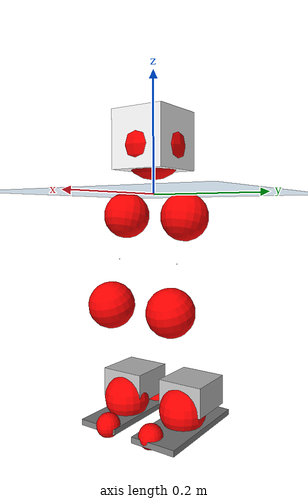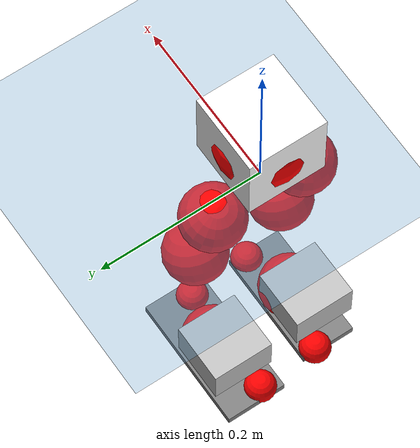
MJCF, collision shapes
<mujoco model="pi_12dof_release_v1">
  <compiler angle="radian" assetdir="assets" balanceinertia="true" inertiafromgeom="false"/>

  <option timestep="0.005" density="1.2" viscosity="2e-05"/>

  <size nkey="1"/>

  <visual>
    <quality shadowsize="8192"/>
    <map shadowclip="0.5"/>
  </visual>

  <default>
    <default class="/">
      <joint armature="0.01" damping="0.01" frictionloss="0.01"/>
      <geom contype="0" conaffinity="0" group="1" solref="-1000 -80"/>
      <site size="0.01 0.005 0.005" group="5"/>
      <general forcelimited="true" biastype="affine" gainprm="20" biasprm="0 -20 -0.5"/>
      <default class="foot">
        <geom size="0.0845 0.036 0.005" type="box" condim="6" group="4" priority="1" friction="0.9 0.2 0.2" solimp="0.015 1 0.005"/>
      </default>
      <default class="reward_collision_sphere">
        <geom group="5" rgba="1 0 0 1"/>
      </default>
    </default>
  </default>

  <asset>
    <texture type="skybox" colorspace="auto" name="//unnamed_texture_0" builtin="gradient" rgb1="0.95 0.95 0.95" rgb2="0.95 0.95 0.95" width="100" height="600"/>
    <texture type="2d" colorspace="auto" name="texplane" builtin="checker" rgb1="0.345 0.575 0.748" rgb2="0.345 0.575 0.748" markrgb="1 1 1" width="512" height="512"/>
    <material name="MatPlane" class="/" texture="texplane" texuniform="true" texrepeat="2 2" specular="0.9"/>
    <mesh name="baselink_1" class="/" file="baselink_1.STL"/>
    <mesh name="r_hip_pitch_link" class="/" file="r_hip_pitch_link.STL"/>
    <mesh name="r_hip_roll_link" class="/" file="r_hip_roll_link.STL"/>
    <mesh name="r_thigh_link" class="/" file="r_thigh_link.STL"/>
    <mesh name="r_calf_link" class="/" file="r_calf_link.STL"/>
    <mesh name="r_ankle_pitch_link" class="/" file="r_ankle_pitch_link.STL"/>
    <mesh name="r_ankle_roll_link" class="/" file="r_ankle_roll_link.STL"/>
    <mesh name="l_hip_pitch_link" class="/" file="l_hip_pitch_link.STL"/>
    <mesh name="l_hip_roll_link" class="/" file="l_hip_roll_link.STL"/>
    <mesh name="l_thigh_link" class="/" file="l_thigh_link.STL"/>
    <mesh name="l_calf_link" class="/" file="l_calf_link.STL"/>
    <mesh name="l_ankle_pitch_link" class="/" file="l_ankle_pitch_link.STL"/>
    <mesh name="l_ankle_roll_link" class="/" file="l_ankle_roll_link.STL"/>
  </asset>

  <worldbody>
    <geom name="floor" class="/" size="100 100 0.125" type="plane" group="0" material="MatPlane"/>
    <light name="toplight_shadow" class="/" pos="0 0 5" dir="0.0990148 0.0990148 -0.990148" type="directional" ambient="0.04 0.04 0.04" diffuse="0.55 0.55 0.55" specular="0.12 0.12 0.12"/>
    <light name="toplight_fill" class="/" pos="0 0 5" dir="0.0990148 0.0990148 -0.990148" type="directional" castshadow="false" ambient="0.04 0.04 0.04" diffuse="0.3 0.3 0.3" specular="0.08 0.08 0.08"/>
    <body name="trunk" pos="-7.1986e-05 -1.08367e-05 0.00013433" quat="1 -7.40276e-06 -4.92402e-06 6.60149e-06">
      <inertial pos="0.00172806 -0.00112227 0.0437691" quat="0.691893 0.00227803 0.011951 0.721898" mass="1.88509" diaginertia="0.0110286 0.00225205 0.00628799"/>
      <joint name="//unnamed_joint_0" type="free"/>
      <geom name="//unnamed_geom_1" class="/" type="mesh" density="0" rgba="1 1 1 1" mesh="baselink_1"/>
      <geom name="//unnamed_geom_2" class="/" size="0.0477294 0.0477294 0.0477294" pos="0 0 0.0868894" type="box" rgba="1 1 1 1"/>
      <geom name="//unnamed_geom_3" class="reward_collision_sphere" size="0.0525023" pos="0 0 0.0760282"/>
      <site name="imu" class="/" pos="-0.000668745 -0.00448003 -6.59414e-06" size="0.00954588"/>
      <camera name="track" class="/" pos="0 -1.51082 0" quat="0.707107 0.707107 0 0" mode="trackcom"/>
      <camera name="ego_camera" class="/" pos="0.0766677 0 0.195501" quat="-0.5 -0.5 0.5 0.5"/>
      <body name="r_hip_pitch_link" pos="-0.000318 -0.0152973 -0.0343958" quat="0.992195 2.74711e-05 -0.124694 3.15789e-05">
        <inertial pos="0.000967347 -0.0426207 -0.000901553" quat="-0.0194989 0.705201 -0.0292382 0.708136" mass="0.322823" diaginertia="0.000121064 2.42796e-05 0.000126486"/>
        <joint name="r_hip_pitch_joint" class="/" pos="0 0 0" axis="0.00366243 -0.999992 -0.00143303" range="-1.74813 1.26775" armature="0.00947204" damping="0.0123162" frictionloss="0.00950212"/>
        <geom name="//unnamed_geom_4" class="/" type="mesh" density="0" rgba="0.75294 0.75294 0.75294 1" mesh="r_hip_pitch_link"/>
        <geom name="//unnamed_geom_5" class="/" size="0.000477294 0.000477294 0.000477294" type="box" rgba="0.75294 0.75294 0.75294 1"/>
        <body name="r_hip_roll_link" pos="0.0013408 -0.0400632 -6.83867e-05" quat="1 4.50309e-05 4.08261e-05 0.000108213">
          <inertial pos="-0.00111593 -0.00102503 -0.0660237" quat="0.704123 -0.0793691 -0.0808826 0.700977" mass="0.338088" diaginertia="0.000372737 6.82198e-05 0.00019419"/>
          <joint name="r_hip_roll_joint" class="/" pos="0 0 0" axis="-0.999994 -0.00180653 -0.00285692" range="-0.120288 0.502752" armature="0.00979045" damping="0.00378123" frictionloss="0.00961902"/>
          <geom name="//unnamed_geom_6" class="/" type="mesh" density="0" rgba="0.75294 0.75294 0.75294 1" mesh="r_hip_roll_link"/>
          <geom name="//unnamed_geom_7" class="/" size="0.000477294 0.000477294 0.000477294" type="box" rgba="0.75294 0.75294 0.75294 1"/>
          <geom name="//unnamed_geom_8" class="reward_collision_sphere" size="0.0381835"/>
          <body name="r_thigh_link" pos="0.000604158 -0.000329578 -0.0750893" quat="1 0.000152933 -0.000157927 -0.00038136">
            <inertial pos="3.90762e-05 0.000667068 -0.0531352" quat="0.737244 0.675626 -8.53203e-05 -0.000141892" mass="0.0976605" diaginertia="0.000139857 2.36999e-05 8.61407e-05"/>
            <joint name="r_thigh_joint" class="/" pos="0 0 0" axis="0.0002645 -0.000481107 -1" range="-0.293537 0.593209" armature="0.0099562" damping="0.00511755" frictionloss="0.00963228"/>
            <geom name="//unnamed_geom_9" class="/" type="mesh" density="0" rgba="0.75294 0.75294 0.75294 1" mesh="r_thigh_link"/>
            <geom name="//unnamed_geom_10" class="/" size="0.000477294 0.000477294 0.000477294" type="box" rgba="0.75294 0.75294 0.75294 1"/>
            <body name="r_calf_link" pos="0.000439602 -0.00116993 -0.0762915" quat="0.947665 1.67364e-05 0.319267 4.64827e-05">
              <inertial pos="0.000567257 -0.000625788 -0.0756847" quat="0.99998 -0.00417724 0.000372395 0.00471452" mass="0.702211" diaginertia="0.00395011 0.000841904 0.000264559"/>
              <joint name="r_calf_joint" class="/" pos="0 0 0" axis="-0.00325595 -0.999994 0.0014472" range="-1.61464 0.628689" armature="0.00952317" damping="0.00722511" frictionloss="0.00908018"/>
              <geom name="//unnamed_geom_11" class="/" type="mesh" density="0" rgba="0.75294 0.75294 0.75294 1" mesh="r_calf_link"/>
              <geom name="//unnamed_geom_12" class="/" size="0.000477294 0.000477294 0.000477294" type="box" rgba="0.75294 0.75294 0.75294 1"/>
              <geom name="//unnamed_geom_13" class="reward_collision_sphere" size="0.0381835"/>
              <body name="r_ankle_pitch_link" pos="0.001606 0.00220037 -0.153191" quat="0.980089 0.000494292 -0.198559 0.000138556">
                <inertial pos="0.00584955 0.00109898 -0.000213488" quat="0.00362862 0.704767 -0.00409942 0.709418" mass="0.15304" diaginertia="0.000345082 5.47729e-05 0.000183665"/>
                <joint name="r_ankle_pitch_joint" class="/" pos="0 0 0" axis="0.00707587 -0.999969 -0.00332858" stiffness="0.000512096" range="-1.3183 0.524856" armature="0.00942366" damping="0.0063897" frictionloss="0.00987686"/>
                <geom name="//unnamed_geom_14" class="/" type="mesh" density="0" rgba="0.75294 0.75294 0.75294 1" mesh="r_ankle_pitch_link"/>
                <geom name="//unnamed_geom_15" class="/" size="0.0372289 0.0381835 0.0238647" type="box" rgba="0.75294 0.75294 0.75294 1"/>
                <body name="r_ankle_roll_link" pos="0.076546 0.00270172 0.000166842" quat="1 -2.10012e-05 -1.07662e-05 -0.000352211">
                  <inertial pos="-0.0252833 0.000315026 -0.0162387" quat="0.562253 0.430388 0.43114 0.559247" mass="0.452135" diaginertia="0.00126847 0.000253424 0.000426338"/>
                  <joint name="r_ankle_roll_joint" class="/" pos="0 0 0" axis="-0.999999 -0.000745312 -0.000995604" range="-0.180269 0.154333" armature="0.00947236" damping="0.0119319" frictionloss="0.0100087"/>
                  <geom name="//unnamed_geom_16" class="/" type="mesh" density="0" rgba="0.75294 0.75294 0.75294 1" mesh="r_ankle_roll_link"/>
                  <geom name="//unnamed_geom_17" class="/" type="mesh" rgba="0.75294 0.75294 0.75294 1" mesh="r_ankle_roll_link"/>
                  <geom name="right_foot" class="foot" size="0.0754419 0.0342098 0.00459589" pos="-0.052134 0 -0.0477892"/>
                  <geom name="//unnamed_geom_19" class="reward_collision_sphere" size="0.0381835" pos="-0.0511118 0 -0.0217223"/>
                  <geom name="//unnamed_geom_20" class="reward_collision_sphere" size="0.0190918" pos="0.0153335 0.0151082 -0.0434447"/>
                  <geom name="//unnamed_geom_21" class="reward_collision_sphere" size="0.0190918" pos="-0.122668 0.0151082 -0.0434447"/>
                  <site name="right_foot" class="foot" pos="-0.052134 0 -0.0477892" size="0.00954588"/>
                </body>
              </body>
            </body>
          </body>
        </body>
      </body>
      <body name="l_hip_pitch_link" pos="-0.000859006 0.01755 -0.0349419" quat="0.992197 0.000222765 -0.124683 0.00012501">
        <inertial pos="0.00104234 0.0400409 -0.00122096" quat="-0.0392172 0.706036 0.0302378 0.706442" mass="0.334212" diaginertia="0.000141417 2.55576e-05 0.000150193"/>
        <joint name="l_hip_pitch_joint" class="/" pos="0 0 0" axis="0.000408763 1 0.000393051" range="-1.25127 1.74889" armature="0.00969193" damping="0.00150342" frictionloss="0.00928356"/>
        <geom name="//unnamed_geom_22" class="/" type="mesh" density="0" rgba="0.75294 0.75294 0.75294 1" mesh="l_hip_pitch_link"/>
        <geom name="//unnamed_geom_23" class="/" size="0.000477294 0.000477294 0.000477294" type="box" rgba="0.75294 0.75294 0.75294 1"/>
        <body name="l_hip_roll_link" pos="0.000985682 0.0422263 -0.00127983" quat="1 -1.44245e-05 -3.22791e-05 -4.55425e-05">
          <inertial pos="-0.000948906 -0.000265022 -0.0677554" quat="0.701596 -0.0729507 -0.0796726 0.704339" mass="0.342314" diaginertia="0.000368737 6.69326e-05 0.000192158"/>
          <joint name="l_hip_roll_joint" class="/" pos="0 0 0" axis="-0.999998 -0.00182502 -0.00112125" range="-0.524999 0.115276" armature="0.00965386" damping="0.00740483" frictionloss="0.00920456"/>
          <geom name="//unnamed_geom_24" class="/" type="mesh" density="0" rgba="0.75294 0.75294 0.75294 1" mesh="l_hip_roll_link"/>
          <geom name="//unnamed_geom_25" class="/" size="0.000477294 0.000477294 0.000477294" type="box" rgba="0.75294 0.75294 0.75294 1"/>
          <geom name="//unnamed_geom_26" class="reward_collision_sphere" size="0.0381835"/>
          <body name="l_thigh_link" pos="0.00071297 -0.00206384 -0.0750643" quat="1 1.45728e-05 1.57261e-05 1.50725e-05">
            <inertial pos="0.000512061 -0.00133265 -0.0517459" quat="0.675597 0.737269 0.00105991 -0.000799509" mass="0.0961097" diaginertia="0.000139239 2.3126e-05 8.66741e-05"/>
            <joint name="l_thigh_joint" class="/" pos="0 0 0" axis="6.10919e-05 -0.000114355 -1" range="-0.59139 0.296552" armature="0.00992323" damping="0.00108571" frictionloss="0.00958832"/>
            <geom name="//unnamed_geom_27" class="/" type="mesh" density="0" rgba="0.75294 0.75294 0.75294 1" mesh="l_thigh_link"/>
            <geom name="//unnamed_geom_28" class="/" size="0.000477294 0.000477294 0.000477294" type="box" rgba="0.75294 0.75294 0.75294 1"/>
            <body name="l_calf_link" pos="-0.000765114 0.000197117 -0.0751698" quat="0.947641 -0.000143953 0.319337 -0.000182366">
              <inertial pos="6.28321e-05 0.00261119 -0.0759284" quat="0.999985 0.00301639 0.000388311 0.00465314" mass="0.697169" diaginertia="0.00388125 0.000843655 0.000264443"/>
              <joint name="l_calf_joint" class="/" pos="0 0 0" axis="0.00364841 0.999991 0.00201176" stiffness="0.00110796" range="-0.644882 1.66796" armature="0.00939144" damping="0.0075529" frictionloss="0.00925983"/>
              <geom name="//unnamed_geom_29" class="/" type="mesh" density="0" rgba="0.75294 0.75294 0.75294 1" mesh="l_calf_link"/>
              <geom name="//unnamed_geom_30" class="/" size="0.000477294 0.000477294 0.000477294" type="box" rgba="0.75294 0.75294 0.75294 1"/>
              <geom name="//unnamed_geom_31" class="reward_collision_sphere" size="0.0381835"/>
              <body name="l_ankle_pitch_link" pos="-6.08613e-05 0.00106677 -0.152413" quat="0.980065 0.000464864 -0.198678 -0.000275702">
                <inertial pos="0.00489356 -0.00142763 -0.00103709" quat="-0.00200754 0.70759 0.00353292 0.706611" mass="0.154004" diaginertia="0.000347281 5.49165e-05 0.000183027"/>
                <joint name="l_ankle_pitch_joint" class="/" pos="0 0 0" axis="0.000954432 0.999999 -0.00122824" stiffness="0.00305645" range="-0.512843 1.29109" armature="0.00967804" damping="0.00767148" frictionloss="0.00956467"/>
                <geom name="//unnamed_geom_32" class="/" type="mesh" density="0" rgba="0.75294 0.75294 0.75294 1" mesh="l_ankle_pitch_link"/>
                <geom name="//unnamed_geom_33" class="/" size="0.0372289 0.0381835 0.0238647" type="box" rgba="0.75294 0.75294 0.75294 1"/>
                <body name="l_ankle_roll_link" pos="0.0750068 -0.00122024 -0.00011077" quat="1 -0.000396476 0.000113834 0.000375452">
                  <inertial pos="-0.0234532 -0.000415372 -0.0152079" quat="0.559923 0.433323 0.434851 0.556437" mass="0.452837" diaginertia="0.00128127 0.000254911 0.000430895"/>
                  <joint name="l_ankle_roll_joint" class="/" pos="0 0 0" axis="-0.99996 0.00559168 0.007004" stiffness="0.000788659" range="-0.123201 0.156052" armature="0.0100794" damping="0.0141145" frictionloss="0.00928594"/>
                  <geom name="//unnamed_geom_34" class="/" type="mesh" density="0" rgba="0.75294 0.75294 0.75294 1" mesh="l_ankle_roll_link"/>
                  <geom name="//unnamed_geom_35" class="/" type="mesh" rgba="0.75294 0.75294 0.75294 1" mesh="l_ankle_roll_link"/>
                  <geom name="left_foot" class="foot" size="0.0850346 0.0381076 0.00468491" pos="-0.052134 0 -0.0477892"/>
                  <geom name="//unnamed_geom_37" class="reward_collision_sphere" size="0.0381835" pos="-0.0511118 0 -0.0217223"/>
                  <geom name="//unnamed_geom_38" class="reward_collision_sphere" size="0.0190918" pos="0.0153335 -0.0151082 -0.0434447"/>
                  <geom name="//unnamed_geom_39" class="reward_collision_sphere" size="0.0190918" pos="-0.122668 -0.0151082 -0.0434447"/>
                  <site name="left_foot" class="foot" pos="-0.052134 0 -0.0477892" size="0.00954588"/>
                </body>
              </body>
            </body>
          </body>
        </body>
      </body>
    </body>
  </worldbody>

  <contact>
    <pair class="/" geom1="floor" geom2="right_foot" name="//unnamed_contact_1"/>
    <pair class="/" geom1="floor" geom2="left_foot" name="//unnamed_contact_0"/>
  </contact>

  <actuator>
    <general name="r_hip_pitch_joint" class="/" joint="r_hip_pitch_joint" forcerange="-20.0978 20.0978" gainprm="19.5549" biasprm="0 -19.5549 -0.470349"/>
    <general name="r_hip_roll_joint" class="/" joint="r_hip_roll_joint" forcerange="-20.0289 20.0289" gainprm="19.5549" biasprm="0 -19.5549 -0.470349"/>
    <general name="r_thigh_joint" class="/" joint="r_thigh_joint" forcerange="-19.7276 19.7276" gainprm="19.5549" biasprm="0 -19.5549 -0.470349"/>
    <general name="r_calf_joint" class="/" joint="r_calf_joint" forcerange="-19.447 19.447" gainprm="19.5549" biasprm="0 -19.5549 -0.470349"/>
    <general name="r_ankle_pitch_joint" class="/" joint="r_ankle_pitch_joint" forcerange="-20.8942 20.8942" gainprm="19.5549" biasprm="0 -19.5549 -0.470349"/>
    <general name="r_ankle_roll_joint" class="/" joint="r_ankle_roll_joint" forcerange="-20.9078 20.9078" gainprm="19.5549" biasprm="0 -19.5549 -0.470349"/>
    <general name="l_hip_pitch_joint" class="/" joint="l_hip_pitch_joint" forcerange="-21.4064 21.4064" gainprm="19.5549" biasprm="0 -19.5549 -0.470349"/>
    <general name="l_hip_roll_joint" class="/" joint="l_hip_roll_joint" forcerange="-20.4628 20.4628" gainprm="19.5549" biasprm="0 -19.5549 -0.470349"/>
    <general name="l_thigh_joint" class="/" joint="l_thigh_joint" forcerange="-20.3227 20.3227" gainprm="19.5549" biasprm="0 -19.5549 -0.470349"/>
    <general name="l_calf_joint" class="/" joint="l_calf_joint" forcerange="-20.9407 20.9407" gainprm="19.5549" biasprm="0 -19.5549 -0.470349"/>
    <general name="l_ankle_pitch_joint" class="/" joint="l_ankle_pitch_joint" forcerange="-20.923 20.923" gainprm="19.5549" biasprm="0 -19.5549 -0.470349"/>
    <general name="l_ankle_roll_joint" class="/" joint="l_ankle_roll_joint" forcerange="-19.5867 19.5867" gainprm="19.5549" biasprm="0 -19.5549 -0.470349"/>
  </actuator>

  <sensor>
    <gyro site="imu" name="imu_angular_velocity"/>
    <velocimeter site="imu" name="imu_linear_velocity"/>
    <framelinvel objtype="site" objname="left_foot" name="left_foot_global_linear_velocity"/>
    <framelinvel objtype="site" objname="right_foot" name="right_foot_global_linear_velocity"/>
  </sensor>

  <keyframe>
    <key name="home" qpos="0 0 0.291 1 0 0 0 0.4 0 0 -0.8 0.4 0 -0.4 0 0 0.8 -0.4 0"/>
  </keyframe>
</mujoco>
